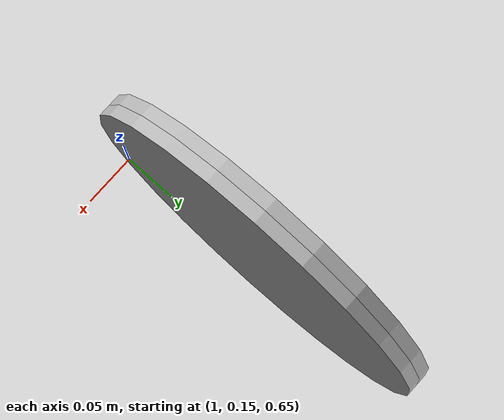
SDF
<sdf version="1.7">
 <world name="default">
  <light name="sun" type="directional">
   <pose>0 0 10 0 -0 0</pose>
   <diffuse>0.8 0.8 0.8 1</diffuse>
   <specular>0.2 0.2 0.2 1</specular>
   <attenuation>
    <range>1000</range>
    <constant>0.9</constant>
    <linear>0.01</linear>
    <quadratic>0.001</quadratic>
   </attenuation>
   <direction>-0.5 0.1 -0.9</direction>
   <spot><inner_angle>0</inner_angle><outer_angle>0</outer_angle><falloff>0</falloff></spot>
  </light>
  <model name="ground_plane">
   <static>1</static>
   <link name="link">
    <collision name="collision">
     <geometry><plane><normal>0 0 1</normal><size>100 100</size></plane></geometry>
     <surface>
      <contact><collide_bitmask>65535</collide_bitmask></contact>
      <friction><ode><mu>100</mu><mu2>50</mu2></ode></friction>
     </surface>
    </collision>
    <visual name="visual">
     <cast_shadows>0</cast_shadows>
     <geometry><plane><normal>0 0 1</normal><size>100 100</size></plane></geometry>
     <material>
      <script><uri>file://media/materials/scripts/gazebo.material</uri><name>Gazebo/Grey</name></script>
     </material>
    </visual>
   </link>
  </model>
  <gravity>0 0 -9.8</gravity>
  <magnetic_field>6e-06 2.3e-05 -4.2e-05</magnetic_field>
  <atmosphere type="adiabatic"/>
  <physics type="ode">
   <max_step_size>0.001</max_step_size>
   <real_time_factor>1</real_time_factor>
   <real_time_update_rate>1000</real_time_update_rate>
  </physics>
  <scene><ambient>0.4 0.4 0.4 1</ambient><background>0.7 0.7 0.7 1</background><shadows>1</shadows></scene>
  <spherical_coordinates>
   <surface_model>EARTH_WGS84</surface_model>
   <latitude_deg>0</latitude_deg>
   <longitude_deg>0</longitude_deg>
   <elevation>0</elevation>
   <heading_deg>0</heading_deg>
  </spherical_coordinates>
  <model name="circular_object">
   <static>1</static>
   <link name="link">
    <visual name="front_visual">
     <pose>0 0 0.005 0 -0 0</pose>
     <geometry><cylinder><radius>0.15</radius><length>0.01</length></cylinder></geometry>
     <material>
      <script>
       <uri>model://circular_object/materials/scripts</uri>
       <uri>model://circular_object/materials/textures</uri>
       <name>CircularObject</name>
      </script>
     </material>
    </visual>
    <visual name="rear_visual">
     <pose>0 0 -0.005 0 -0 0</pose>
     <geometry><cylinder><radius>0.15</radius><length>0.01</length></cylinder></geometry>
    </visual>
    <collision name="collision">
     <geometry><cylinder><radius>0.15</radius><length>0.01</length></cylinder></geometry>
    </collision>
   </link>
   <pose>1 0.3 0.8 3.14 1.57 -0</pose>
  </model>
 </world>
</sdf>
